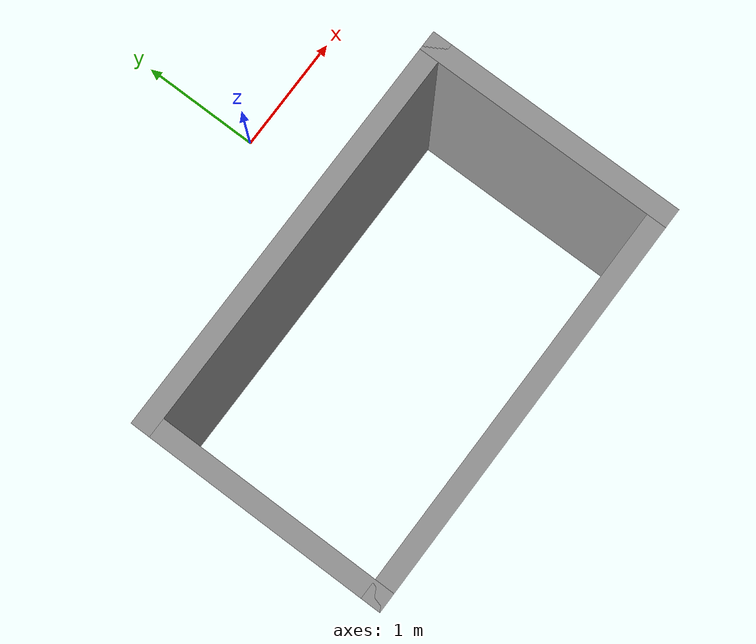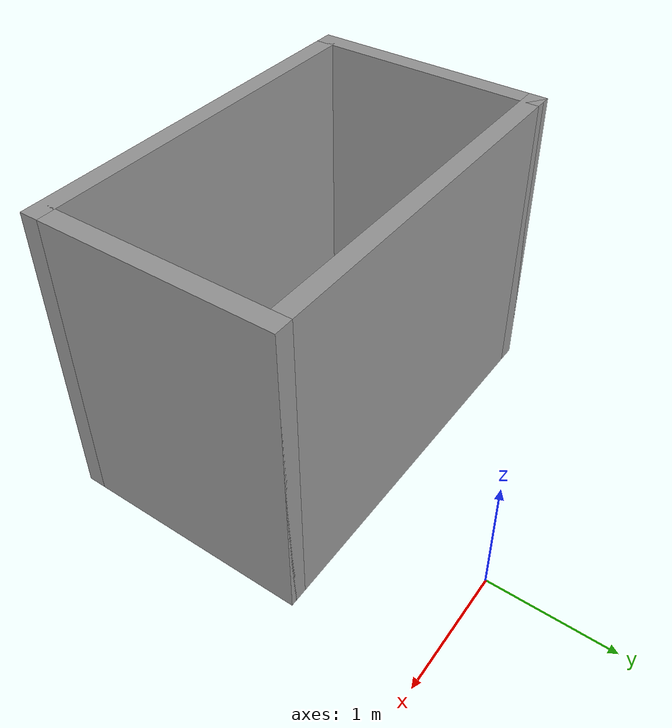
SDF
<?xml version='1.0'?>
<sdf version='1.6'>
  <model name='Model'>
    <pose frame=''>-0.67 -2.005 0 0 -0 0</pose>
    <link name='Wall_5'>
      <collision name='Wall_5_Collision'>
        <geometry>
          <box>
            <size>3.25 0.15 2.5</size>
          </box>
        </geometry>
        <pose frame=''>0 0 1.25 0 -0 0</pose>
      </collision>
      <visual name='Wall_5_Visual'>
        <pose frame=''>0 0 1.25 0 -0 0</pose>
        <geometry>
          <box>
            <size>3.25 0.15 2.5</size>
          </box>
        </geometry>
        <material>
          <script>
            <uri>file://media/materials/scripts/gazebo.material</uri>
            <name>Gazebo/Grey</name>
          </script>
          <ambient>1 1 1 1</ambient>
        </material>
        <meta>
          <layer>0</layer>
        </meta>
      </visual>
      <pose frame=''>0 0.925 0 0 -0 0</pose>
    </link>
    <link name='Wall_6'>
      <collision name='Wall_6_Collision'>
        <geometry>
          <box>
            <size>2 0.15 2.5</size>
          </box>
        </geometry>
        <pose frame=''>0 0 1.25 0 -0 0</pose>
      </collision>
      <visual name='Wall_6_Visual'>
        <pose frame=''>0 0 1.25 0 -0 0</pose>
        <geometry>
          <box>
            <size>2 0.15 2.5</size>
          </box>
        </geometry>
        <material>
          <script>
            <uri>file://media/materials/scripts/gazebo.material</uri>
            <name>Gazebo/Grey</name>
          </script>
          <ambient>1 1 1 1</ambient>
        </material>
        <meta>
          <layer>0</layer>
        </meta>
      </visual>
      <pose frame=''>1.55 0 0 0 0 -1.5708</pose>
    </link>
    <link name='Wall_7'>
      <collision name='Wall_7_Collision'>
        <geometry>
          <box>
            <size>3.25 0.15 2.5</size>
          </box>
        </geometry>
        <pose frame=''>0 0 1.25 0 -0 0</pose>
      </collision>
      <visual name='Wall_7_Visual'>
        <pose frame=''>0 0 1.25 0 -0 0</pose>
        <geometry>
          <box>
            <size>3.25 0.15 2.5</size>
          </box>
        </geometry>
        <material>
          <script>
            <uri>file://media/materials/scripts/gazebo.material</uri>
            <name>Gazebo/Grey</name>
          </script>
          <ambient>1 1 1 1</ambient>
        </material>
        <meta>
          <layer>0</layer>
        </meta>
      </visual>
      <pose frame=''>0 -0.925 0 0 -0 3.14159</pose>
    </link>
    <link name='Wall_8'>
      <collision name='Wall_8_Collision'>
        <geometry>
          <box>
            <size>2 0.15 2.5</size>
          </box>
        </geometry>
        <pose frame=''>0 0 1.25 0 -0 0</pose>
      </collision>
      <visual name='Wall_8_Visual'>
        <pose frame=''>0 0 1.25 0 -0 0</pose>
        <geometry>
          <box>
            <size>2 0.15 2.5</size>
          </box>
        </geometry>
        <material>
          <script>
            <uri>file://media/materials/scripts/gazebo.material</uri>
            <name>Gazebo/Grey</name>
          </script>
          <ambient>1 1 1 1</ambient>
        </material>
        <meta>
          <layer>0</layer>
        </meta>
      </visual>
      <pose frame=''>-1.55 0 0 0 -0 1.5708</pose>
    </link>
    <static>1</static>
  </model>
</sdf>
